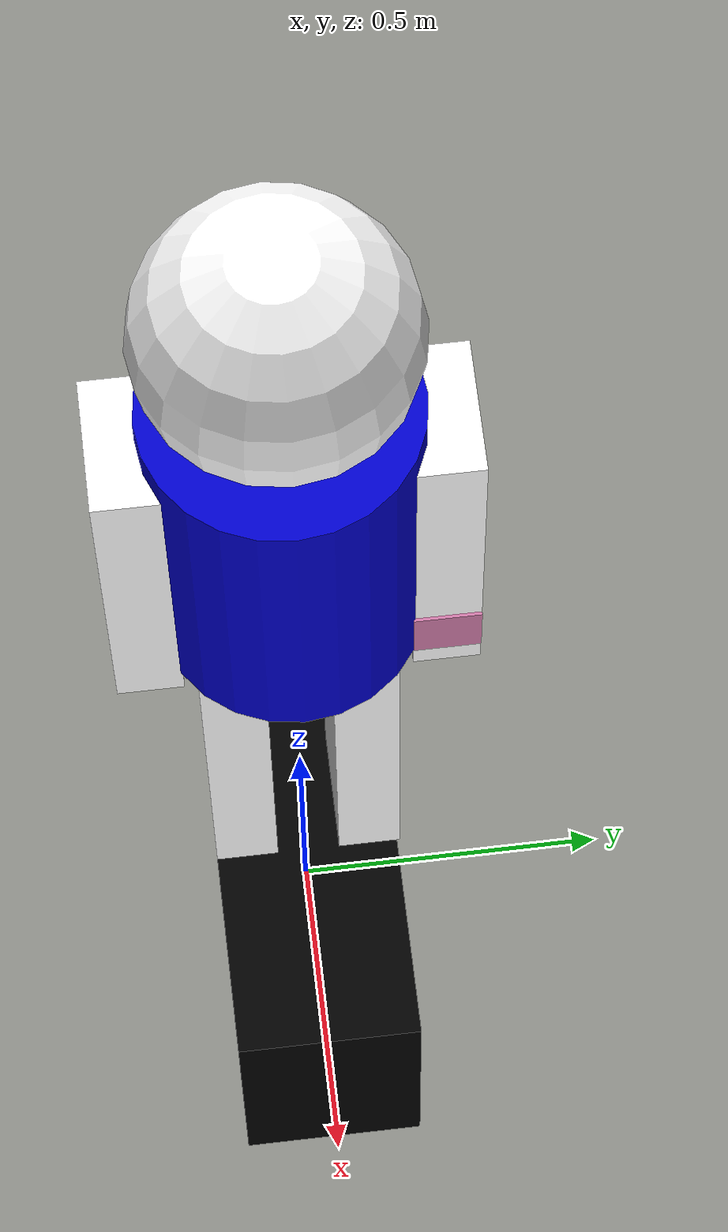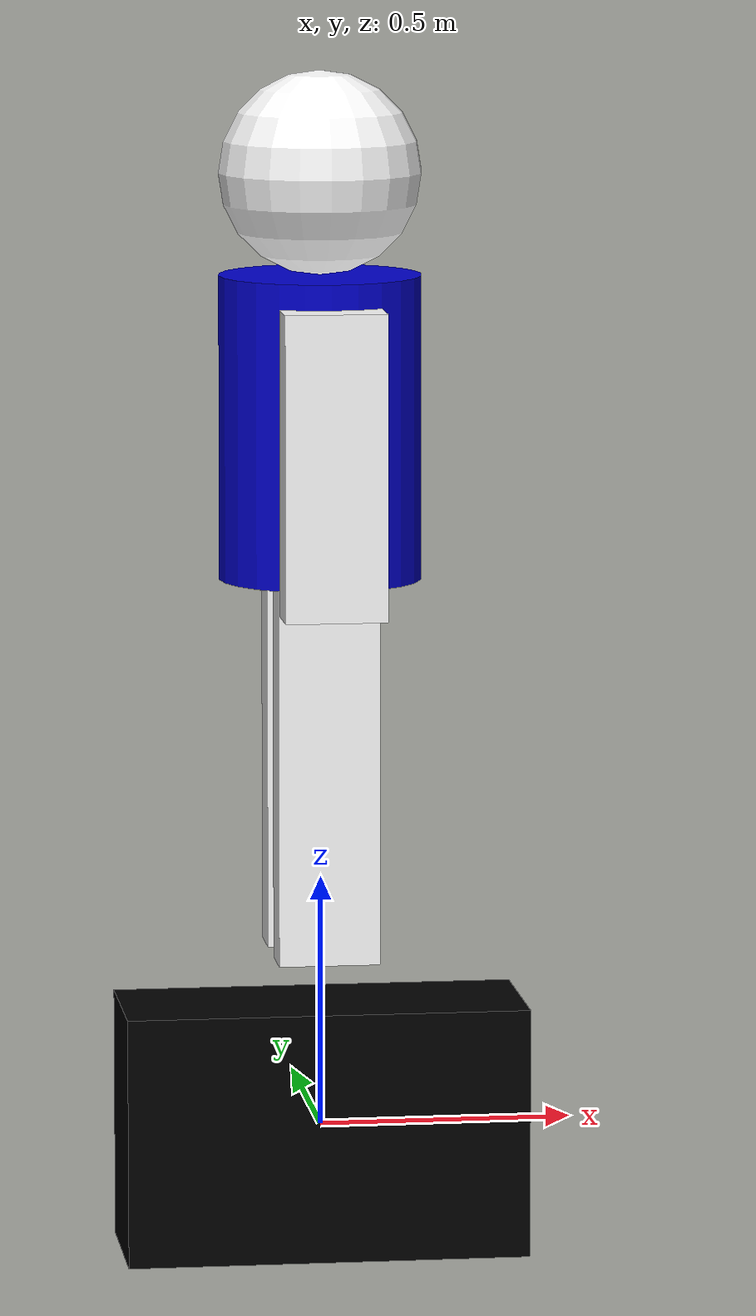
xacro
<?xml version="1.0"?>
<robot name="gazebo1" xmlns:xacro="http://ros.org/wiki/xacro">

  <xacro:property name="width" value="0.2" />
  <xacro:property name="leglen" value="0.6" />
  <xacro:property name="polelen" value="0.2" />
  <xacro:property name="bodylen" value="0.6" />
  <xacro:property name="baselen" value="0.4" />
  <xacro:property name="wheeldiam" value="0.07" />
  <xacro:property name="pi" value="3.1415" />
  <xacro:property name="ped_height" value="0.8" />

  <material name="blue">
    <color rgba="0 0 0.8 1"/>
  </material>

  <material name="black">
    <color rgba="0 0 0 1"/>
  </material>

  <material name="white">
    <color rgba="1 1 1 1"/>
  </material>

  <xacro:macro name="default_inertial" params="mass">
    <inertial>
      <mass value="${mass}" />
      <inertia ixx="1.0" ixy="0.0" ixz="0.0" iyy="1.0" iyz="0.0" izz="1.0" />
    </inertial>
  </xacro:macro>

  <link name="base_link">
    <visual>
      <geometry>
        <cylinder radius="${width}" length="${bodylen}"/>
      </geometry>
      <origin xyz="0 0 ${0.6+ped_height}"/>
      <material name="blue"/>
    </visual>
    <collision>
      <geometry>
        <cylinder radius="${width}" length="${bodylen}"/>
      </geometry>
    </collision>
    <xacro:default_inertial mass="10"/>
  </link>

  <xacro:macro name="arm" params="prefix reflect">
    <link name="${prefix}_arm">
      <inertial>
        <origin rpy="0 0 0" xyz="0 0 0"/>
        <mass value="10"/>
        <inertia ixx="0.308" ixy="0.0" ixz="0.0" iyy="0.04" iyz="0.0" izz="0.333"/>
      </inertial>
      <visual>
        <geometry>
          <box size="${leglen} 0.1 0.2"/>
        </geometry>
        <origin xyz="0 0 -${leglen/2}" rpy="0 ${pi/2} 0"/>
        <material name="white"/>
      </visual>
      <collision>
        <geometry>
          <box size="${leglen/2} 0.1 0.2"/>
        </geometry>
        <origin xyz="0 0 -${leglen+ped_height}" rpy="0 ${pi/2} 0"/>
      </collision>

    </link>

    <joint name="base_to_${prefix}_arm" type="revolute">
      <axis xyz="1 0 0"/>
      <limit effort="50000.0" lower="0.0" upper="${reflect *3}" velocity="0.000001"/>
      <origin rpy="0 0 0" xyz="0 ${reflect*(width+.02)} ${0.85+ped_height}" />
      <parent link="base_link"/>
      <child link="${prefix}_arm"/>
      <dynamics damping="0.1" friction="0"/>
    </joint>

  </xacro:macro>
  <xacro:arm prefix="right" reflect="-1" />
  <xacro:arm prefix="left" reflect="1" />

    <xacro:macro name="leg" params="prefix reflect">
    <link name="${prefix}_leg">
      <visual>
        <geometry>
          <box size="0.8 0.1 0.2"/>
        </geometry>
        <origin xyz="0 0 -${leglen/2}" rpy="0 ${pi/2} 0"/>
        <material name="white"/>
      </visual>
      <collision>
        <geometry>
          <box size="0.8 0.1 0.2"/>
        </geometry>
        <origin xyz="0 0 -${leglen/2}" rpy="0 ${pi/2} 0"/>
      </collision>
      <xacro:default_inertial mass="10"/>
    </link>

    <joint name="base_to_${prefix}_leg" type="fixed">
      <parent link="base_link"/>
      <child link="${prefix}_leg"/>
      <origin xyz="0 ${reflect*0.1} ${0.25+ped_height}" />
    </joint>

  </xacro:macro>
  <xacro:leg prefix="right" reflect="-1" />
  <xacro:leg prefix="left" reflect="1" />

  <link name="head">
    <visual>
      <geometry>
        <sphere radius="${width}"/>
      </geometry>
      <material name="white"/>
    </visual>
    <collision>
      <geometry>
        <sphere radius="${width}"/>
      </geometry>
    </collision>
    <xacro:default_inertial mass="2"/>
  </link>

  <joint name="head_swivel" type="continuous">
    <parent link="base_link"/>
    <child link="head"/>
    <axis xyz="0 0 1"/>
    <origin xyz="0 0 ${1.1+ped_height}"/>
  </joint>

  <link name="aruco1">
    <visual>
      <origin rpy="0 ${pi/2} 0" xyz="0.1 0 ${-0.5}"/>
      <geometry>
        <mesh filename="package://mannequin/meshes/arucotag1.dae"/>
      </geometry>
    </visual>
  </link>

  <joint name="aruco1_joint" type="fixed">
    <parent link="left_arm"/>
    <child link="aruco1"/>
  </joint>

    <link name="pedistal">
      <visual>
        <geometry>
          <box size="0.5 0.3 0.8"/>
        </geometry>
        <origin xyz="0 0 0" rpy="0 ${pi/2} 0"/>
        <material name="black"/>
      </visual>
      <collision>
        <geometry>
          <box size="0.5 0.3 ${ped_height}"/>
        </geometry>
        <origin xyz="0 0 0" rpy="0 ${pi/2} 0"/>
      </collision>
      <xacro:default_inertial mass="10"/>
    </link>

    <joint name="leg_pedistal" type="fixed">
      <parent link="base_link"/>
      <child link="pedistal"/>
      <origin xyz="0 0 0" />
    </joint>

  <!-- Gazebo plugin for ROS Control -->
  <gazebo>
    <plugin name="gazebo_ros_control" filename="libgazebo_ros_control.so">
      <robotNamespace>/</robotNamespace>
    </plugin>
  </gazebo>

    <gazebo reference="base_link">
    <mu1>0</mu1>
    <mu2>0</mu2>
    <fdir1 value = "1 0 0"/>
 <dynamics damping="0.7" friction="100.0" />
    <material>Gazebo/Black</material>
    <turnGravityOff>false</turnGravityOff>
  </gazebo>

</robot>
